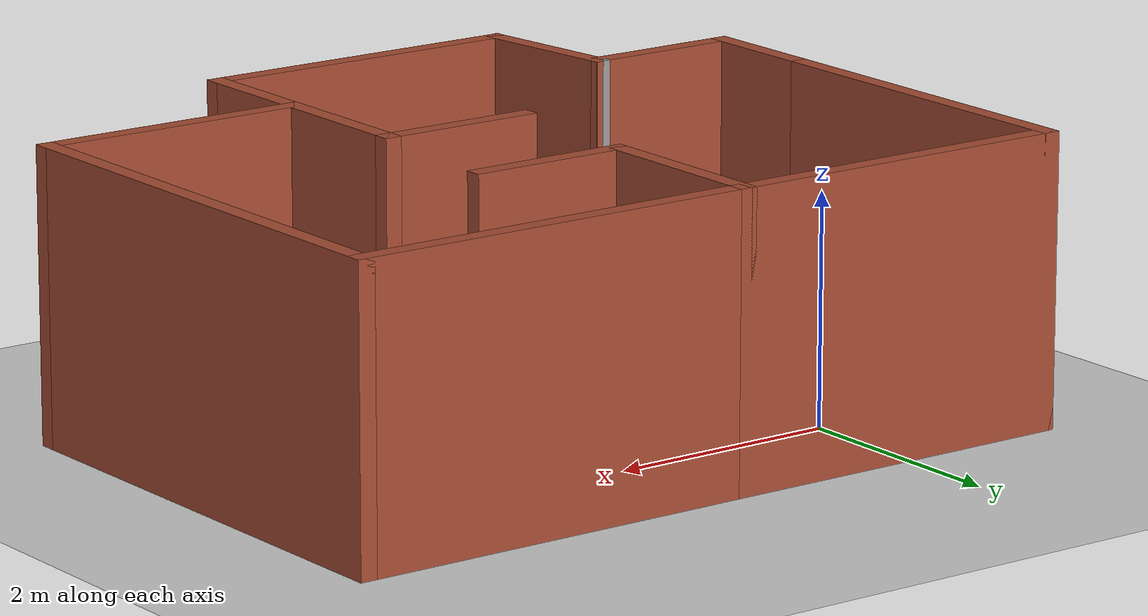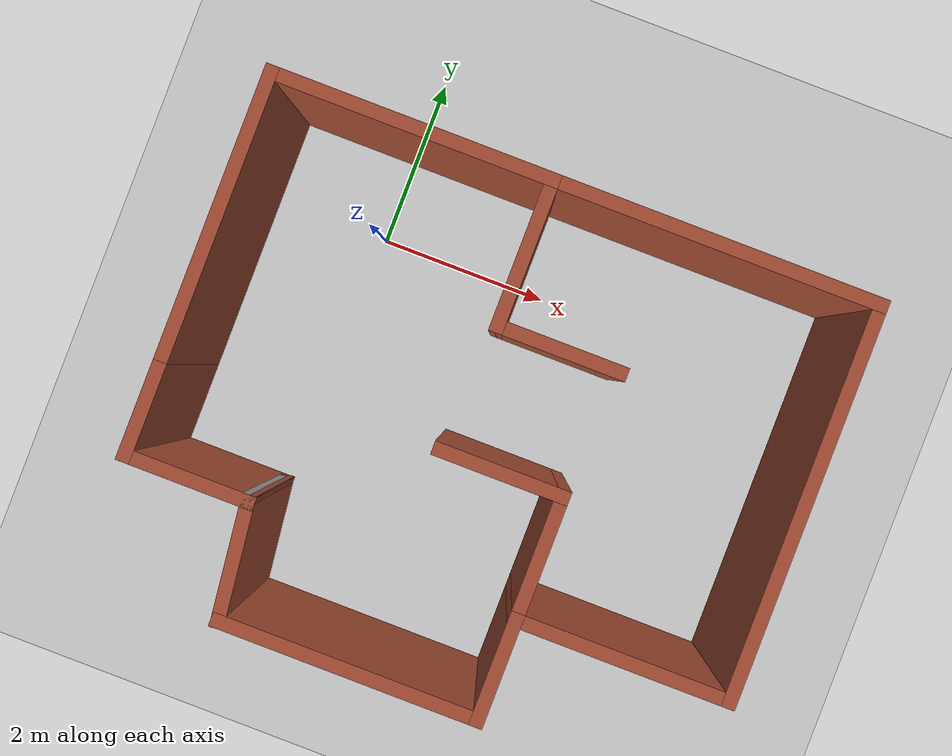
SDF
<sdf version="1.7">
 <world name="default">
  <light name="sun" type="directional">
   <pose>0 0 10 0 -0 0</pose>
   <diffuse>0.8 0.8 0.8 1</diffuse>
   <specular>0.2 0.2 0.2 1</specular>
   <attenuation>
    <range>1000</range>
    <constant>0.9</constant>
    <linear>0.01</linear>
    <quadratic>0.001</quadratic>
   </attenuation>
   <direction>-0.5 0.1 -0.9</direction>
   <spot><inner_angle>0</inner_angle><outer_angle>0</outer_angle><falloff>0</falloff></spot>
  </light>
  <model name="ground_plane">
   <static>1</static>
   <link name="link">
    <collision name="collision">
     <geometry><plane><normal>0 0 1</normal><size>100 100</size></plane></geometry>
     <surface>
      <contact><collide_bitmask>65535</collide_bitmask></contact>
      <friction><ode><mu>100</mu><mu2>50</mu2></ode></friction>
     </surface>
    </collision>
    <visual name="visual">
     <cast_shadows>0</cast_shadows>
     <geometry><plane><normal>0 0 1</normal><size>100 100</size></plane></geometry>
     <material>
      <script><uri>file://media/materials/scripts/gazebo.material</uri><name>Gazebo/Grey</name></script>
     </material>
    </visual>
   </link>
  </model>
  <gravity>0 0 -9.8</gravity>
  <magnetic_field>6e-06 2.3e-05 -4.2e-05</magnetic_field>
  <atmosphere type="adiabatic"/>
  <physics type="ode">
   <max_step_size>0.001</max_step_size>
   <real_time_factor>1</real_time_factor>
   <real_time_update_rate>1000</real_time_update_rate>
  </physics>
  <scene><ambient>0.4 0.4 0.4 1</ambient><background>0.7 0.7 0.7 1</background><shadows>1</shadows></scene>
  <audio><device>default</device></audio>
  <spherical_coordinates>
   <surface_model>EARTH_WGS84</surface_model>
   <latitude_deg>0</latitude_deg>
   <longitude_deg>0</longitude_deg>
   <elevation>0</elevation>
   <heading_deg>0</heading_deg>
  </spherical_coordinates>
  <model name="custom_world">
   <pose>1.90652 -1.66398 0 0 -0 0</pose>
   <link name="Wall_1">
    <collision name="Wall_1_Collision">
     <geometry><box><size>3.25 0.15 2.5</size></box></geometry>
     <pose>0 0 1.25 0 -0 0</pose>
    </collision>
    <visual name="Wall_1_Visual">
     <pose>0 0 1.25 0 -0 0</pose>
     <geometry><box><size>3.25 0.15 2.5</size></box></geometry>
     <material>
      <script><uri>file://media/materials/scripts/gazebo.material</uri><name>Gazebo/Bricks</name></script>
      <ambient>1 1 1 1</ambient>
     </material>
     <meta><layer>0</layer></meta>
    </visual>
    <pose>-3.35 1.1792 0 0 -0 1.5708</pose>
   </link>
   <link name="Wall_10">
    <collision name="Wall_10_Collision">
     <geometry><box><size>1.5 0.15 2.5</size></box></geometry>
     <pose>0 0 1.25 0 -0 0</pose>
    </collision>
    <visual name="Wall_10_Visual">
     <pose>0 0 1.25 0 -0 0</pose>
     <geometry><box><size>1.5 0.15 2.5</size></box></geometry>
     <material>
      <script><uri>file://media/materials/scripts/gazebo.material</uri><name>Gazebo/Bricks</name></script>
      <ambient>1 1 1 1</ambient>
     </material>
     <meta><layer>0</layer></meta>
    </visual>
    <pose>0.325 -0.270799 0 0 -0 3.14159</pose>
   </link>
   <link name="Wall_12">
    <collision name="Wall_12_Collision">
     <geometry><box><size>1.25 0.15 2.5</size></box></geometry>
     <pose>0 0 1.25 0 -0 0</pose>
    </collision>
    <visual name="Wall_12_Visual">
     <pose>0 0 1.25 0 -0 0</pose>
     <geometry><box><size>1.25 0.15 2.5</size></box></geometry>
     <material>
      <script><uri>file://media/materials/scripts/gazebo.material</uri><name>Gazebo/Bricks</name></script>
      <ambient>1 1 1 1</ambient>
     </material>
     <meta><layer>0</layer></meta>
    </visual>
    <pose>1 -2.1708 0 0 -0 -1.5708</pose>
   </link>
   <link name="Wall_17">
    <collision name="Wall_17_Collision">
     <geometry><box><size>1.25 0.15 2.5</size></box></geometry>
     <pose>0 0 1.25 0 -0 0</pose>
    </collision>
    <visual name="Wall_17_Visual">
     <pose>0 0 1.25 0 -0 0</pose>
     <geometry><box><size>1.25 0.15 2.5</size></box></geometry>
     <material>
      <script><uri>file://media/materials/scripts/gazebo.material</uri><name>Gazebo/Bricks</name></script>
      <ambient>1 1 1 1</ambient>
     </material>
     <meta><layer>0</layer></meta>
    </visual>
    <pose>-3.35 -0.920799 0 0 -0 -1.5708</pose>
   </link>
   <link name="Wall_18">
    <collision name="Wall_18_Collision">
     <geometry><box><size>1.5 0.15 2.5</size></box></geometry>
     <pose>0 0 1.25 0 -0 0</pose>
    </collision>
    <visual name="Wall_18_Visual">
     <pose>0 0 1.25 0 -0 0</pose>
     <geometry><box><size>1.5 0.15 2.5</size></box></geometry>
     <material>
      <script><uri>file://media/materials/scripts/gazebo.material</uri><name>Gazebo/Bricks</name></script>
      <ambient>1 1 1 1</ambient>
     </material>
     <meta><layer>0</layer></meta>
    </visual>
    <pose>-2.675 -1.4708 0 0 -0 0</pose>
   </link>
   <link name="Wall_19">
    <collision name="Wall_19_Collision">
     <geometry><box><size>0.15 0.15 2.5</size></box></geometry>
     <pose>0 0 1.25 0 -0 0</pose>
    </collision>
    <visual name="Wall_19_Visual">
     <pose>0 0 1.25 0 -0 0</pose>
     <geometry><box><size>0.15 0.15 2.5</size></box></geometry>
     <material>
      <script><uri>file://media/materials/scripts/gazebo.material</uri><name>Gazebo/Grey</name></script>
      <ambient>1 1 1 1</ambient>
     </material>
     <meta><layer>0</layer></meta>
    </visual>
    <pose>-2 -1.4708 0 0 -0 0</pose>
   </link>
   <link name="Wall_2">
    <collision name="Wall_2_Collision">
     <geometry><box><size>3.25 0.15 2.5</size></box></geometry>
     <pose>0 0 1.25 0 -0 0</pose>
    </collision>
    <visual name="Wall_2_Visual">
     <pose>0 0 1.25 0 -0 0</pose>
     <geometry><box><size>3.25 0.15 2.5</size></box></geometry>
     <material>
      <script><uri>file://media/materials/scripts/gazebo.material</uri><name>Gazebo/Bricks</name></script>
      <ambient>1 1 1 1</ambient>
     </material>
     <meta><layer>0</layer></meta>
    </visual>
    <pose>-1.8 2.7292 0 0 -0 0</pose>
   </link>
   <link name="Wall_20">
    <collision name="Wall_20_Collision">
     <geometry><box><size>0.15 0.15 2.5</size></box></geometry>
     <pose>0 0 1.25 0 -0 0</pose>
    </collision>
    <visual name="Wall_20_Visual">
     <pose>0 0 1.25 0 -0 0</pose>
     <geometry><box><size>0.15 0.15 2.5</size></box></geometry>
     <material>
      <script><uri>file://media/materials/scripts/gazebo.material</uri><name>Gazebo/Grey</name></script>
      <ambient>1 1 1 1</ambient>
     </material>
     <meta><layer>0</layer></meta>
    </visual>
    <pose>-2 -1.4708 0 0 -0 0</pose>
   </link>
   <link name="Wall_22">
    <collision name="Wall_22_Collision">
     <geometry><box><size>3 0.15 2.5</size></box></geometry>
     <pose>0 0 1.25 0 -0 0</pose>
    </collision>
    <visual name="Wall_22_Visual">
     <pose>0 0 1.25 0 -0 0</pose>
     <geometry><box><size>3 0.15 2.5</size></box></geometry>
     <material>
      <script><uri>file://media/materials/scripts/gazebo.material</uri><name>Gazebo/Bricks</name></script>
      <ambient>1 1 1 1</ambient>
     </material>
     <meta><layer>0</layer></meta>
    </visual>
    <pose>-0.425 -2.7208 0 0 -0 3.14159</pose>
   </link>
   <link name="Wall_23">
    <collision name="Wall_23_Collision">
     <geometry><box><size>1.40897 0.15 2.5</size></box></geometry>
     <pose>0 0 1.25 0 -0 0</pose>
    </collision>
    <visual name="Wall_23_Visual">
     <pose>0 0 1.25 0 -0 0</pose>
     <geometry><box><size>1.40897 0.15 2.5</size></box></geometry>
     <material>
      <script><uri>file://media/materials/scripts/gazebo.material</uri><name>Gazebo/Bricks</name></script>
      <ambient>1 1 1 1</ambient>
     </material>
     <meta><layer>0</layer></meta>
    </visual>
    <pose>-1.925 -2.0958 0 0 -0 1.69023</pose>
   </link>
   <link name="Wall_3">
    <collision name="Wall_3_Collision">
     <geometry><box><size>1.75 0.15 2.5</size></box></geometry>
     <pose>0 0 1.25 0 -0 0</pose>
    </collision>
    <visual name="Wall_3_Visual">
     <pose>0 0 1.25 0 -0 0</pose>
     <geometry><box><size>1.75 0.15 2.5</size></box></geometry>
     <material>
      <script><uri>file://media/materials/scripts/gazebo.material</uri><name>Gazebo/Bricks</name></script>
      <ambient>1 1 1 1</ambient>
     </material>
     <meta><layer>0</layer></meta>
    </visual>
    <pose>-0.25 1.9292 0 0 -0 -1.5708</pose>
   </link>
   <link name="Wall_4">
    <collision name="Wall_4_Collision">
     <geometry><box><size>1.5 0.15 2.5</size></box></geometry>
     <pose>0 0 1.25 0 -0 0</pose>
    </collision>
    <visual name="Wall_4_Visual">
     <pose>0 0 1.25 0 -0 0</pose>
     <geometry><box><size>1.5 0.15 2.5</size></box></geometry>
     <material>
      <script><uri>file://media/materials/scripts/gazebo.material</uri><name>Gazebo/Bricks</name></script>
      <ambient>1 1 1 1</ambient>
     </material>
     <meta><layer>0</layer></meta>
    </visual>
    <pose>0.425 1.1292 0 0 -0 0</pose>
   </link>
   <link name="Wall_6">
    <collision name="Wall_6_Collision">
     <geometry><box><size>3.75 0.15 2.5</size></box></geometry>
     <pose>0 0 1.25 0 -0 0</pose>
    </collision>
    <visual name="Wall_6_Visual">
     <pose>0 0 1.25 0 -0 0</pose>
     <geometry><box><size>3.75 0.15 2.5</size></box></geometry>
     <material>
      <script><uri>file://media/materials/scripts/gazebo.material</uri><name>Gazebo/Bricks</name></script>
      <ambient>1 1 1 1</ambient>
     </material>
     <meta><layer>0</layer></meta>
    </visual>
    <pose>1.55 2.7292 0 0 -0 0</pose>
   </link>
   <link name="Wall_7">
    <collision name="Wall_7_Collision">
     <geometry><box><size>4.5 0.15 2.5</size></box></geometry>
     <pose>0 0 1.25 0 -0 0</pose>
    </collision>
    <visual name="Wall_7_Visual">
     <pose>0 0 1.25 0 -0 0</pose>
     <geometry><box><size>4.5 0.15 2.5</size></box></geometry>
     <material>
      <script><uri>file://media/materials/scripts/gazebo.material</uri><name>Gazebo/Bricks</name></script>
      <ambient>1 1 1 1</ambient>
     </material>
     <meta><layer>0</layer></meta>
    </visual>
    <pose>3.35 0.554201 0 0 -0 -1.5708</pose>
   </link>
   <link name="Wall_8">
    <collision name="Wall_8_Collision">
     <geometry><box><size>2.5 0.15 2.5</size></box></geometry>
     <pose>0 0 1.25 0 -0 0</pose>
    </collision>
    <visual name="Wall_8_Visual">
     <pose>0 0 1.25 0 -0 0</pose>
     <geometry><box><size>2.5 0.15 2.5</size></box></geometry>
     <material>
      <script><uri>file://media/materials/scripts/gazebo.material</uri><name>Gazebo/Bricks</name></script>
      <ambient>1 1 1 1</ambient>
     </material>
     <meta><layer>0</layer></meta>
    </visual>
    <pose>2.175 -1.6208 0 0 -0 3.14159</pose>
   </link>
   <link name="Wall_9">
    <collision name="Wall_9_Collision">
     <geometry><box><size>1.5 0.15 2.5</size></box></geometry>
     <pose>0 0 1.25 0 -0 0</pose>
    </collision>
    <visual name="Wall_9_Visual">
     <pose>0 0 1.25 0 -0 0</pose>
     <geometry><box><size>1.5 0.15 2.5</size></box></geometry>
     <material>
      <script><uri>file://media/materials/scripts/gazebo.material</uri><name>Gazebo/Bricks</name></script>
      <ambient>1 1 1 1</ambient>
     </material>
     <meta><layer>0</layer></meta>
    </visual>
    <pose>1 -0.945799 0 0 -0 1.5708</pose>
   </link>
   <static>1</static>
  </model>
 </world>
</sdf>
